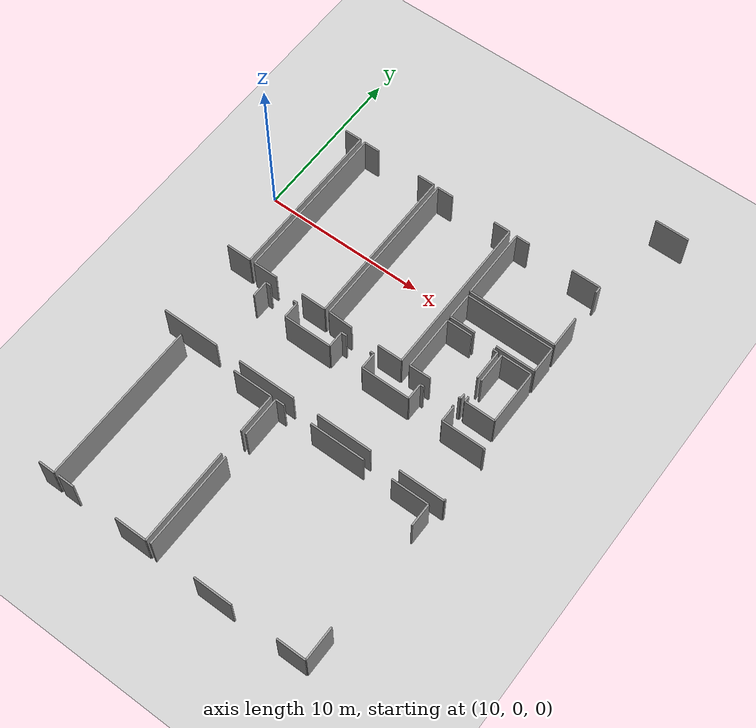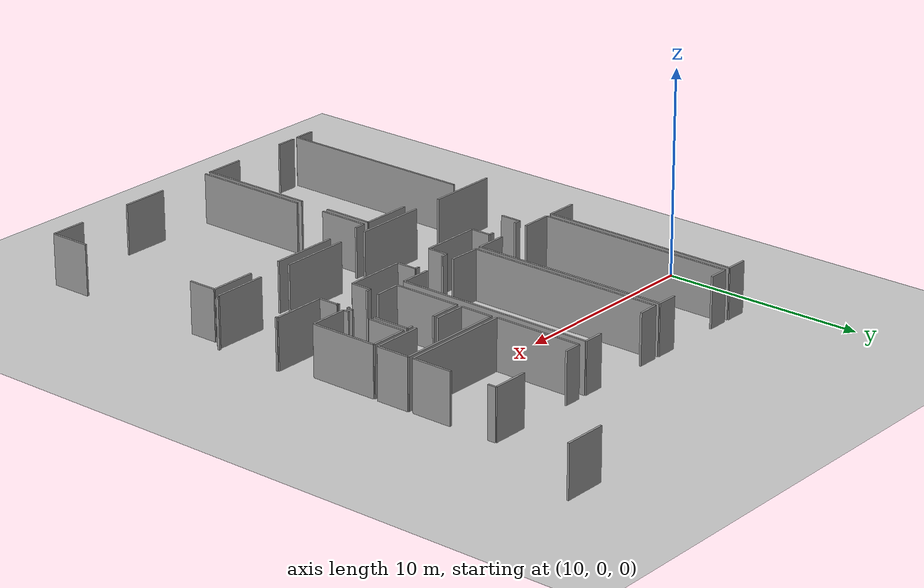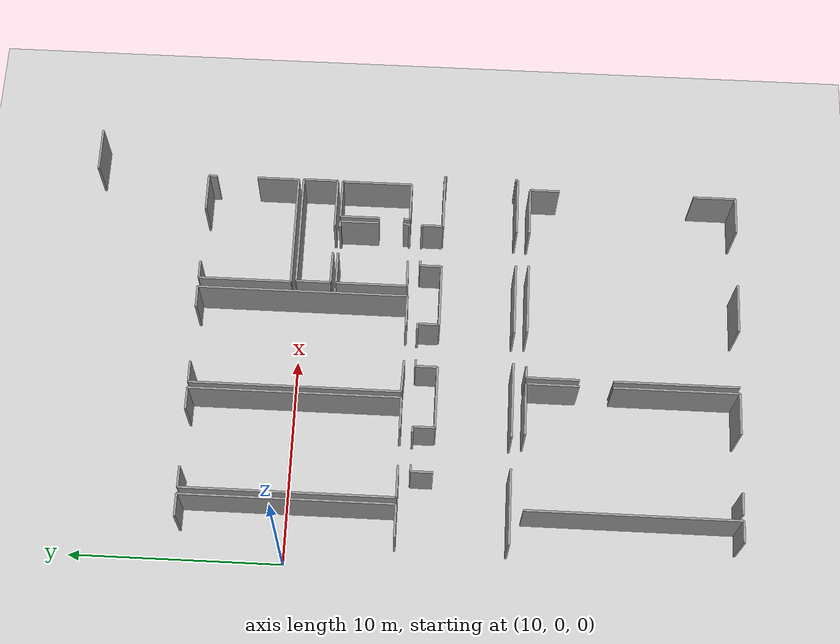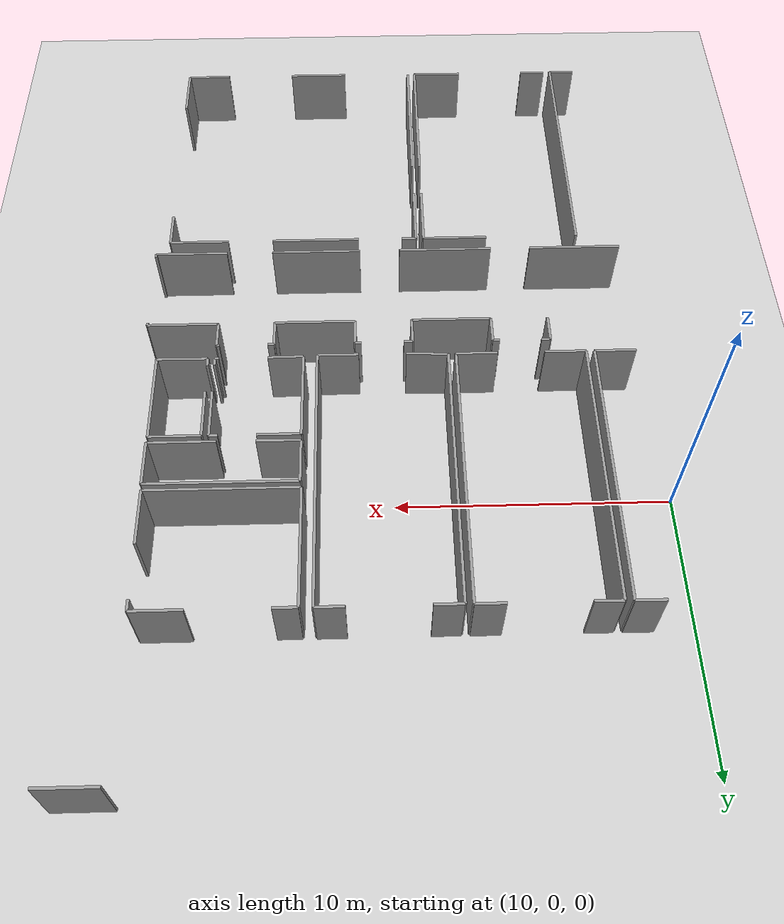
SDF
<sdf version="1.6">
 <world name="default">
  <model name="ground_plane">
   <static>1</static>
   <link name="link">
    <collision name="collision">
     <geometry><plane><normal>0 0 1</normal><size>100 100</size></plane></geometry>
     <surface><friction><ode><mu>100</mu><mu2>50</mu2></ode></friction></surface>
    </collision>
    <visual name="visual">
     <cast_shadows>0</cast_shadows>
     <geometry><plane><normal>0 0 1</normal><size>100 100</size></plane></geometry>
     <material>
      <script><uri>file://media/materials/scripts/gazebo.material</uri><name>Gazebo/Grey</name></script>
     </material>
    </visual>
   </link>
  </model>
  <model name="50055639">
   <static>1</static>
   <link name="Wall_229">
    <collision name="Wall_229_Collision">
     <geometry><box><size>1.02806585511 0.1 2.5</size></box></geometry>
     <pose>0.514032927557 0 1.25 0 0 0</pose>
    </collision>
    <visual name="Wall_229_Visual">
     <pose>0.514032927557 0 1.25 0 0 0</pose>
     <geometry><box><size>1.02806585511 0.1 2.5</size></box></geometry>
     <material>
      <script><uri>file://media/materials/scripts/gazebo.material</uri><name>Gazebo/Grey</name></script>
      <ambient>1 1 1 1</ambient>
     </material>
    </visual>
    <pose>84.4576600363 -27.5893829574 0 0 0 1.57079632679</pose>
   </link>
   <link name="Wall_230">
    <collision name="Wall_230_Collision">
     <geometry><box><size>0.326609883345 0.1 2.5</size></box></geometry>
     <pose>0.163304941672 0 1.25 0 0 0</pose>
    </collision>
    <visual name="Wall_230_Visual">
     <pose>0.163304941672 0 1.25 0 0 0</pose>
     <geometry><box><size>0.326609883345 0.1 2.5</size></box></geometry>
     <material>
      <script><uri>file://media/materials/scripts/gazebo.material</uri><name>Gazebo/Grey</name></script>
      <ambient>1 1 1 1</ambient>
     </material>
    </visual>
    <pose>84.4576600363 -26.5613171023 0 0 0 0.0</pose>
   </link>
   <link name="Wall_231">
    <collision name="Wall_231_Collision">
     <geometry><box><size>0.261364069105 0.1 2.5</size></box></geometry>
     <pose>0.130682034552 0 1.25 0 0 0</pose>
    </collision>
    <visual name="Wall_231_Visual">
     <pose>0.130682034552 0 1.25 0 0 0</pose>
     <geometry><box><size>0.261364069105 0.1 2.5</size></box></geometry>
     <material>
      <script><uri>file://media/materials/scripts/gazebo.material</uri><name>Gazebo/Grey</name></script>
      <ambient>1 1 1 1</ambient>
     </material>
    </visual>
    <pose>86.3519465847 -26.5613171023 0 0 0 0.0</pose>
   </link>
   <link name="Wall_232">
    <collision name="Wall_232_Collision">
     <geometry><box><size>1.03060460275 0.1 2.5</size></box></geometry>
     <pose>0.515302301375 0 1.25 0 0 0</pose>
    </collision>
    <visual name="Wall_232_Visual">
     <pose>0.515302301375 0 1.25 0 0 0</pose>
     <geometry><box><size>1.03060460275 0.1 2.5</size></box></geometry>
     <material>
      <script><uri>file://media/materials/scripts/gazebo.material</uri><name>Gazebo/Grey</name></script>
      <ambient>1 1 1 1</ambient>
     </material>
    </visual>
    <pose>86.6133106539 -26.5613171023 0 0 0 -1.57079632679</pose>
   </link>
   <link name="Wall_233">
    <collision name="Wall_233_Collision">
     <geometry><box><size>2.99013696543 0.1 2.5</size></box></geometry>
     <pose>1.49506848272 0 1.25 0 0 0</pose>
    </collision>
    <visual name="Wall_233_Visual">
     <pose>1.49506848272 0 1.25 0 0 0</pose>
     <geometry><box><size>2.99013696543 0.1 2.5</size></box></geometry>
     <material>
      <script><uri>file://media/materials/scripts/gazebo.material</uri><name>Gazebo/Grey</name></script>
      <ambient>1 1 1 1</ambient>
     </material>
    </visual>
    <pose>86.6133106539 -27.591921705 0 0 0 0.0</pose>
   </link>
   <link name="Wall_234">
    <collision name="Wall_234_Collision">
     <geometry><box><size>1.03060460275 0.1 2.5</size></box></geometry>
     <pose>0.515302301375 0 1.25 0 0 0</pose>
    </collision>
    <visual name="Wall_234_Visual">
     <pose>0.515302301375 0 1.25 0 0 0</pose>
     <geometry><box><size>1.03060460275 0.1 2.5</size></box></geometry>
     <material>
      <script><uri>file://media/materials/scripts/gazebo.material</uri><name>Gazebo/Grey</name></script>
      <ambient>1 1 1 1</ambient>
     </material>
    </visual>
    <pose>89.6034476193 -27.591921705 0 0 0 1.57079632679</pose>
   </link>
   <link name="Wall_235">
    <collision name="Wall_235_Collision">
     <geometry><box><size>0.333845314107 0.1 2.5</size></box></geometry>
     <pose>0.166922657053 0 1.25 0 0 0</pose>
    </collision>
    <visual name="Wall_235_Visual">
     <pose>0.166922657053 0 1.25 0 0 0</pose>
     <geometry><box><size>0.333845314107 0.1 2.5</size></box></geometry>
     <material>
      <script><uri>file://media/materials/scripts/gazebo.material</uri><name>Gazebo/Grey</name></script>
      <ambient>1 1 1 1</ambient>
     </material>
    </visual>
    <pose>89.6034476193 -26.5613171023 0 0 0 0.0</pose>
   </link>
   <link name="Wall_236">
    <collision name="Wall_236_Collision">
     <geometry><box><size>0.233691719875 0.1 2.5</size></box></geometry>
     <pose>0.116845859937 0 1.25 0 0 0</pose>
    </collision>
    <visual name="Wall_236_Visual">
     <pose>0.116845859937 0 1.25 0 0 0</pose>
     <geometry><box><size>0.233691719875 0.1 2.5</size></box></geometry>
     <material>
      <script><uri>file://media/materials/scripts/gazebo.material</uri><name>Gazebo/Grey</name></script>
      <ambient>1 1 1 1</ambient>
     </material>
    </visual>
    <pose>91.5186788357 -26.5613171023 0 0 0 0.0</pose>
   </link>
   <link name="Wall_237">
    <collision name="Wall_237_Collision">
     <geometry><box><size>1.01753005243 0.1 2.5</size></box></geometry>
     <pose>0.508765026213 0 1.25 0 0 0</pose>
    </collision>
    <visual name="Wall_237_Visual">
     <pose>0.508765026213 0 1.25 0 0 0</pose>
     <geometry><box><size>1.01753005243 0.1 2.5</size></box></geometry>
     <material>
      <script><uri>file://media/materials/scripts/gazebo.material</uri><name>Gazebo/Grey</name></script>
      <ambient>1 1 1 1</ambient>
     </material>
    </visual>
    <pose>91.7523705556 -26.5613171023 0 0 0 -1.57079632679</pose>
   </link>
   <link name="Wall_238">
    <collision name="Wall_238_Collision">
     <geometry><box><size>3.01311263154 0.1 2.5</size></box></geometry>
     <pose>1.50655631577 0 1.25 0 0 0</pose>
    </collision>
    <visual name="Wall_238_Visual">
     <pose>1.50655631577 0 1.25 0 0 0</pose>
     <geometry><box><size>3.01311263154 0.1 2.5</size></box></geometry>
     <material>
      <script><uri>file://media/materials/scripts/gazebo.material</uri><name>Gazebo/Grey</name></script>
      <ambient>1 1 1 1</ambient>
     </material>
    </visual>
    <pose>91.7523705556 -27.5788471547 0 0 0 0.0</pose>
   </link>
   <link name="Wall_239">
    <collision name="Wall_239_Collision">
     <geometry><box><size>1.02666954391 0.1 2.5</size></box></geometry>
     <pose>0.513334771957 0 1.25 0 0 0</pose>
    </collision>
    <visual name="Wall_239_Visual">
     <pose>0.513334771957 0 1.25 0 0 0</pose>
     <geometry><box><size>1.02666954391 0.1 2.5</size></box></geometry>
     <material>
      <script><uri>file://media/materials/scripts/gazebo.material</uri><name>Gazebo/Grey</name></script>
      <ambient>1 1 1 1</ambient>
     </material>
    </visual>
    <pose>94.7654831871 -27.5788471547 0 0 0 1.57079632679</pose>
   </link>
   <link name="Wall_240">
    <collision name="Wall_240_Collision">
     <geometry><box><size>0.233691719875 0.1 2.5</size></box></geometry>
     <pose>0.116845859937 0 1.25 0 0 0</pose>
    </collision>
    <visual name="Wall_240_Visual">
     <pose>0.116845859937 0 1.25 0 0 0</pose>
     <geometry><box><size>0.233691719875 0.1 2.5</size></box></geometry>
     <material>
      <script><uri>file://media/materials/scripts/gazebo.material</uri><name>Gazebo/Grey</name></script>
      <ambient>1 1 1 1</ambient>
     </material>
    </visual>
    <pose>94.7654831871 -26.5521776108 0 0 0 0.0</pose>
   </link>
   <link name="Wall_241">
    <collision name="Wall_241_Collision">
     <geometry><box><size>0.0992650325594 0.1 2.5</size></box></geometry>
     <pose>0.0496325162797 0 1.25 0 0 0</pose>
    </collision>
    <visual name="Wall_241_Visual">
     <pose>0.0496325162797 0 1.25 0 0 0</pose>
     <geometry><box><size>0.0992650325594 0.1 2.5</size></box></geometry>
     <material>
      <script><uri>file://media/materials/scripts/gazebo.material</uri><name>Gazebo/Grey</name></script>
      <ambient>1 1 1 1</ambient>
     </material>
    </visual>
    <pose>96.8013049163 -26.5521776108 0 0 0 0.0</pose>
   </link>
   <link name="Wall_242">
    <collision name="Wall_242_Collision">
     <geometry><box><size>1.01511824217 0.1 2.5</size></box></geometry>
     <pose>0.507559121086 0 1.25 0 0 0</pose>
    </collision>
    <visual name="Wall_242_Visual">
     <pose>0.507559121086 0 1.25 0 0 0</pose>
     <geometry><box><size>1.01511824217 0.1 2.5</size></box></geometry>
     <material>
      <script><uri>file://media/materials/scripts/gazebo.material</uri><name>Gazebo/Grey</name></script>
      <ambient>1 1 1 1</ambient>
     </material>
    </visual>
    <pose>96.9005699488 -26.5521776108 0 0 0 -1.57079632679</pose>
   </link>
   <link name="Wall_243">
    <collision name="Wall_243_Collision">
     <geometry><box><size>2.66771601569 0.1 2.5</size></box></geometry>
     <pose>1.33385800784 0 1.25 0 0 0</pose>
    </collision>
    <visual name="Wall_243_Visual">
     <pose>1.33385800784 0 1.25 0 0 0</pose>
     <geometry><box><size>2.66771601569 0.1 2.5</size></box></geometry>
     <material>
      <script><uri>file://media/materials/scripts/gazebo.material</uri><name>Gazebo/Grey</name></script>
      <ambient>1 1 1 1</ambient>
     </material>
    </visual>
    <pose>96.9005699488 -27.567295853 0 0 0 0.0</pose>
   </link>
   <link name="Wall_244">
    <collision name="Wall_244_Collision">
     <geometry><box><size>0.104469465213 0.1 2.5</size></box></geometry>
     <pose>0.0522347326064 0 1.25 0 0 0</pose>
    </collision>
    <visual name="Wall_244_Visual">
     <pose>0.0522347326064 0 1.25 0 0 0</pose>
     <geometry><box><size>0.104469465213 0.1 2.5</size></box></geometry>
     <material>
      <script><uri>file://media/materials/scripts/gazebo.material</uri><name>Gazebo/Grey</name></script>
      <ambient>1 1 1 1</ambient>
     </material>
    </visual>
    <pose>99.5682859645 -27.567295853 0 0 0 -1.57079632679</pose>
   </link>
   <link name="Wall_245">
    <collision name="Wall_245_Collision">
     <geometry><box><size>0.126175757499 0.1 2.5</size></box></geometry>
     <pose>0.0630878787494 0 1.25 0 0 0</pose>
    </collision>
    <visual name="Wall_245_Visual">
     <pose>0.0630878787494 0 1.25 0 0 0</pose>
     <geometry><box><size>0.126175757499 0.1 2.5</size></box></geometry>
     <material>
      <script><uri>file://media/materials/scripts/gazebo.material</uri><name>Gazebo/Grey</name></script>
      <ambient>1 1 1 1</ambient>
     </material>
    </visual>
    <pose>99.5682859645 -31.0048870892 0 0 0 -1.57079632679</pose>
   </link>
   <link name="Wall_246">
    <collision name="Wall_246_Collision">
     <geometry><box><size>2.7875449041 0.1 2.5</size></box></geometry>
     <pose>1.39377245205 0 1.25 0 0 0</pose>
    </collision>
    <visual name="Wall_246_Visual">
     <pose>1.39377245205 0 1.25 0 0 0</pose>
     <geometry><box><size>2.7875449041 0.1 2.5</size></box></geometry>
     <material>
      <script><uri>file://media/materials/scripts/gazebo.material</uri><name>Gazebo/Grey</name></script>
      <ambient>1 1 1 1</ambient>
     </material>
    </visual>
    <pose>99.5682859645 -31.1310628467 0 0 0 3.14159265359</pose>
   </link>
   <link name="Wall_247">
    <collision name="Wall_247_Collision">
     <geometry><box><size>3.45345840897 0.1 2.5</size></box></geometry>
     <pose>1.72672920448 0 1.25 0 0 0</pose>
    </collision>
    <visual name="Wall_247_Visual">
     <pose>1.72672920448 0 1.25 0 0 0</pose>
     <geometry><box><size>3.45345840897 0.1 2.5</size></box></geometry>
     <material>
      <script><uri>file://media/materials/scripts/gazebo.material</uri><name>Gazebo/Grey</name></script>
      <ambient>1 1 1 1</ambient>
     </material>
    </visual>
    <pose>94.9916856015 -31.1310628467 0 0 0 3.14159265359</pose>
   </link>
   <link name="Wall_248">
    <collision name="Wall_248_Collision">
     <geometry><box><size>3.61403419693 0.1 2.5</size></box></geometry>
     <pose>1.80701709847 0 1.25 0 0 0</pose>
    </collision>
    <visual name="Wall_248_Visual">
     <pose>1.80701709847 0 1.25 0 0 0</pose>
     <geometry><box><size>3.61403419693 0.1 2.5</size></box></geometry>
     <material>
      <script><uri>file://media/materials/scripts/gazebo.material</uri><name>Gazebo/Grey</name></script>
      <ambient>1 1 1 1</ambient>
     </material>
    </visual>
    <pose>89.9663615938 -31.1310628467 0 0 0 3.14159265359</pose>
   </link>
   <link name="Wall_249">
    <collision name="Wall_249_Collision">
     <geometry><box><size>3.55945112276 0.1 2.5</size></box></geometry>
     <pose>1.77972556138 0 1.25 0 0 0</pose>
    </collision>
    <visual name="Wall_249_Visual">
     <pose>1.77972556138 0 1.25 0 0 0</pose>
     <geometry><box><size>3.55945112276 0.1 2.5</size></box></geometry>
     <material>
      <script><uri>file://media/materials/scripts/gazebo.material</uri><name>Gazebo/Grey</name></script>
      <ambient>1 1 1 1</ambient>
     </material>
    </visual>
    <pose>84.7984869064 -31.1310628467 0 0 0 3.14159265359</pose>
   </link>
   <link name="Wall_288">
    <collision name="Wall_288_Collision">
     <geometry><box><size>1.06830500514 0.1 2.5</size></box></geometry>
     <pose>0.53415250257 0 1.25 0 0 0</pose>
    </collision>
    <visual name="Wall_288_Visual">
     <pose>0.53415250257 0 1.25 0 0 0</pose>
     <geometry><box><size>1.06830500514 0.1 2.5</size></box></geometry>
     <material>
      <script><uri>file://media/materials/scripts/gazebo.material</uri><name>Gazebo/Grey</name></script>
      <ambient>1 1 1 1</ambient>
     </material>
    </visual>
    <pose>81.8119041877 -15.9940339431 0 0 0 0.0</pose>
   </link>
   <link name="Wall_289">
    <collision name="Wall_289_Collision">
     <geometry><box><size>9.97892839462 0.1 2.5</size></box></geometry>
     <pose>4.98946419731 0 1.25 0 0 0</pose>
    </collision>
    <visual name="Wall_289_Visual">
     <pose>4.98946419731 0 1.25 0 0 0</pose>
     <geometry><box><size>9.97892839462 0.1 2.5</size></box></geometry>
     <material>
      <script><uri>file://media/materials/scripts/gazebo.material</uri><name>Gazebo/Grey</name></script>
      <ambient>1 1 1 1</ambient>
     </material>
    </visual>
    <pose>82.8802091928 -15.9940339431 0 0 0 -1.57079632679</pose>
   </link>
   <link name="Wall_290">
    <collision name="Wall_290_Collision">
     <geometry><box><size>1.5523172419 0.1 2.5</size></box></geometry>
     <pose>0.776158620952 0 1.25 0 0 0</pose>
    </collision>
    <visual name="Wall_290_Visual">
     <pose>0.776158620952 0 1.25 0 0 0</pose>
     <geometry><box><size>1.5523172419 0.1 2.5</size></box></geometry>
     <material>
      <script><uri>file://media/materials/scripts/gazebo.material</uri><name>Gazebo/Grey</name></script>
      <ambient>1 1 1 1</ambient>
     </material>
    </visual>
    <pose>82.8802091928 -25.9729623377 0 0 0 3.14159265359</pose>
   </link>
   <link name="Wall_292">
    <collision name="Wall_292_Collision">
     <geometry><box><size>9.97385089935 0.1 2.5</size></box></geometry>
     <pose>4.98692544968 0 1.25 0 0 0</pose>
    </collision>
    <visual name="Wall_292_Visual">
     <pose>4.98692544968 0 1.25 0 0 0</pose>
     <geometry><box><size>9.97385089935 0.1 2.5</size></box></geometry>
     <material>
      <script><uri>file://media/materials/scripts/gazebo.material</uri><name>Gazebo/Grey</name></script>
      <ambient>1 1 1 1</ambient>
     </material>
    </visual>
    <pose>83.1890478427 -25.9762627096 0 0 0 1.57079632679</pose>
   </link>
   <link name="Wall_293">
    <collision name="Wall_293_Collision">
     <geometry><box><size>0.993285012503 0.1 2.5</size></box></geometry>
     <pose>0.496642506252 0 1.25 0 0 0</pose>
    </collision>
    <visual name="Wall_293_Visual">
     <pose>0.496642506252 0 1.25 0 0 0</pose>
     <geometry><box><size>0.993285012503 0.1 2.5</size></box></geometry>
     <material>
      <script><uri>file://media/materials/scripts/gazebo.material</uri><name>Gazebo/Grey</name></script>
      <ambient>1 1 1 1</ambient>
     </material>
    </visual>
    <pose>83.1890478427 -16.0024118103 0 0 0 0.0</pose>
   </link>
   <link name="Wall_294">
    <collision name="Wall_294_Collision">
     <geometry><box><size>1.05967326318 0.1 2.5</size></box></geometry>
     <pose>0.52983663159 0 1.25 0 0 0</pose>
    </collision>
    <visual name="Wall_294_Visual">
     <pose>0.52983663159 0 1.25 0 0 0</pose>
     <geometry><box><size>1.05967326318 0.1 2.5</size></box></geometry>
     <material>
      <script><uri>file://media/materials/scripts/gazebo.material</uri><name>Gazebo/Grey</name></script>
      <ambient>1 1 1 1</ambient>
     </material>
    </visual>
    <pose>86.9616268295 -16.0024118103 0 0 0 0.0</pose>
   </link>
   <link name="Wall_295">
    <collision name="Wall_295_Collision">
     <geometry><box><size>9.96851952932 0.1 2.5</size></box></geometry>
     <pose>4.98425976466 0 1.25 0 0 0</pose>
    </collision>
    <visual name="Wall_295_Visual">
     <pose>4.98425976466 0 1.25 0 0 0</pose>
     <geometry><box><size>9.96851952932 0.1 2.5</size></box></geometry>
     <material>
      <script><uri>file://media/materials/scripts/gazebo.material</uri><name>Gazebo/Grey</name></script>
      <ambient>1 1 1 1</ambient>
     </material>
    </visual>
    <pose>88.0213000927 -16.0024118103 0 0 0 -1.57079632679</pose>
   </link>
   <link name="Wall_296">
    <collision name="Wall_296_Collision">
     <geometry><box><size>1.55041318118 0.1 2.5</size></box></geometry>
     <pose>0.775206590589 0 1.25 0 0 0</pose>
    </collision>
    <visual name="Wall_296_Visual">
     <pose>0.775206590589 0 1.25 0 0 0</pose>
     <geometry><box><size>1.55041318118 0.1 2.5</size></box></geometry>
     <material>
      <script><uri>file://media/materials/scripts/gazebo.material</uri><name>Gazebo/Grey</name></script>
      <ambient>1 1 1 1</ambient>
     </material>
    </visual>
    <pose>88.0213000927 -25.9709313396 0 0 0 3.14159265359</pose>
   </link>
   <link name="Wall_297">
    <collision name="Wall_297_Collision">
     <geometry><box><size>1.54001354423 0.1 2.5</size></box></geometry>
     <pose>0.770006772114 0 1.25 0 0 0</pose>
    </collision>
    <visual name="Wall_297_Visual">
     <pose>0.770006772114 0 1.25 0 0 0</pose>
     <geometry><box><size>1.54001354423 0.1 2.5</size></box></geometry>
     <material>
      <script><uri>file://media/materials/scripts/gazebo.material</uri><name>Gazebo/Grey</name></script>
      <ambient>1 1 1 1</ambient>
     </material>
    </visual>
    <pose>84.7290521586 -25.9709313396 0 0 0 -3.13813074853</pose>
   </link>
   <link name="Wall_298">
    <collision name="Wall_298_Collision">
     <geometry><box><size>9.93919699412 0.1 2.5</size></box></geometry>
     <pose>4.96959849706 0 1.25 0 0 0</pose>
    </collision>
    <visual name="Wall_298_Visual">
     <pose>4.96959849706 0 1.25 0 0 0</pose>
     <geometry><box><size>9.93919699412 0.1 2.5</size></box></geometry>
     <material>
      <script><uri>file://media/materials/scripts/gazebo.material</uri><name>Gazebo/Grey</name></script>
      <ambient>1 1 1 1</ambient>
     </material>
    </visual>
    <pose>88.3053859531 -25.9512560454 0 0 0 1.57079632679</pose>
   </link>
   <link name="Wall_299">
    <collision name="Wall_299_Collision">
     <geometry><box><size>1.01727617766 0.1 2.5</size></box></geometry>
     <pose>0.508638088831 0 1.25 0 0 0</pose>
    </collision>
    <visual name="Wall_299_Visual">
     <pose>0.508638088831 0 1.25 0 0 0</pose>
     <geometry><box><size>1.01727617766 0.1 2.5</size></box></geometry>
     <material>
      <script><uri>file://media/materials/scripts/gazebo.material</uri><name>Gazebo/Grey</name></script>
      <ambient>1 1 1 1</ambient>
     </material>
    </visual>
    <pose>88.3053859531 -16.0120590513 0 0 0 0.0</pose>
   </link>
   <link name="Wall_300">
    <collision name="Wall_300_Collision">
     <geometry><box><size>1.02628873177 0.1 2.5</size></box></geometry>
     <pose>0.513144365884 0 1.25 0 0 0</pose>
    </collision>
    <visual name="Wall_300_Visual">
     <pose>0.513144365884 0 1.25 0 0 0</pose>
     <geometry><box><size>1.02628873177 0.1 2.5</size></box></geometry>
     <material>
      <script><uri>file://media/materials/scripts/gazebo.material</uri><name>Gazebo/Grey</name></script>
      <ambient>1 1 1 1</ambient>
     </material>
    </visual>
    <pose>92.1269627693 -16.0120590513 0 0 0 0.0</pose>
   </link>
   <link name="Wall_301">
    <collision name="Wall_301_Collision">
     <geometry><box><size>9.99885756356 0.1 2.5</size></box></geometry>
     <pose>4.99942878178 0 1.25 0 0 0</pose>
    </collision>
    <visual name="Wall_301_Visual">
     <pose>4.99942878178 0 1.25 0 0 0</pose>
     <geometry><box><size>9.99885756356 0.1 2.5</size></box></geometry>
     <material>
      <script><uri>file://media/materials/scripts/gazebo.material</uri><name>Gazebo/Grey</name></script>
      <ambient>1 1 1 1</ambient>
     </material>
    </visual>
    <pose>93.153251501 -16.0120590513 0 0 0 -1.57079632679</pose>
   </link>
   <link name="Wall_302">
    <collision name="Wall_302_Collision">
     <geometry><box><size>1.53441907107 0.1 2.5</size></box></geometry>
     <pose>0.767209535536 0 1.25 0 0 0</pose>
    </collision>
    <visual name="Wall_302_Visual">
     <pose>0.767209535536 0 1.25 0 0 0</pose>
     <geometry><box><size>1.53441907107 0.1 2.5</size></box></geometry>
     <material>
      <script><uri>file://media/materials/scripts/gazebo.material</uri><name>Gazebo/Grey</name></script>
      <ambient>1 1 1 1</ambient>
     </material>
    </visual>
    <pose>93.153251501 -26.0109166148 0 0 0 3.14159265359</pose>
   </link>
   <link name="Wall_303">
    <collision name="Wall_303_Collision">
     <geometry><box><size>1.5594249655 0.1 2.5</size></box></geometry>
     <pose>0.779712482749 0 1.25 0 0 0</pose>
    </collision>
    <visual name="Wall_303_Visual">
     <pose>0.779712482749 0 1.25 0 0 0</pose>
     <geometry><box><size>1.5594249655 0.1 2.5</size></box></geometry>
     <material>
      <script><uri>file://media/materials/scripts/gazebo.material</uri><name>Gazebo/Grey</name></script>
      <ambient>1 1 1 1</ambient>
     </material>
    </visual>
    <pose>89.863669252 -26.0109166148 0 0 0 3.10332525737</pose>
   </link>
   <link name="Wall_304">
    <collision name="Wall_304_Collision">
     <geometry><box><size>3.3891011564 0.1 2.5</size></box></geometry>
     <pose>1.6945505782 0 1.25 0 0 0</pose>
    </collision>
    <visual name="Wall_304_Visual">
     <pose>1.6945505782 0 1.25 0 0 0</pose>
     <geometry><box><size>3.3891011564 0.1 2.5</size></box></geometry>
     <material>
      <script><uri>file://media/materials/scripts/gazebo.material</uri><name>Gazebo/Grey</name></script>
      <ambient>1 1 1 1</ambient>
     </material>
    </visual>
    <pose>93.6655707739 -25.9709313396 0 0 0 1.57079632679</pose>
   </link>
   <link name="Wall_305">
    <collision name="Wall_305_Collision">
     <geometry><box><size>1.57770471826 0.1 2.5</size></box></geometry>
     <pose>0.788852359131 0 1.25 0 0 0</pose>
    </collision>
    <visual name="Wall_305_Visual">
     <pose>0.788852359131 0 1.25 0 0 0</pose>
     <geometry><box><size>1.57770471826 0.1 2.5</size></box></geometry>
     <material>
      <script><uri>file://media/materials/scripts/gazebo.material</uri><name>Gazebo/Grey</name></script>
      <ambient>1 1 1 1</ambient>
     </material>
    </visual>
    <pose>93.6655707739 -22.5818301832 0 0 0 0.0</pose>
   </link>
   <link name="Wall_306">
    <collision name="Wall_306_Collision">
     <geometry><box><size>0.309346399421 0.1 2.5</size></box></geometry>
     <pose>0.154673199711 0 1.25 0 0 0</pose>
    </collision>
    <visual name="Wall_306_Visual">
     <pose>0.154673199711 0 1.25 0 0 0</pose>
     <geometry><box><size>0.309346399421 0.1 2.5</size></box></geometry>
     <material>
      <script><uri>file://media/materials/scripts/gazebo.material</uri><name>Gazebo/Grey</name></script>
      <ambient>1 1 1 1</ambient>
     </material>
    </visual>
    <pose>96.619022836 -22.5818301832 0 0 0 0.0</pose>
   </link>
   <link name="Wall_307">
    <collision name="Wall_307_Collision">
     <geometry><box><size>1.87765775143 0.1 2.5</size></box></geometry>
     <pose>0.938828875716 0 1.25 0 0 0</pose>
    </collision>
    <visual name="Wall_307_Visual">
     <pose>0.938828875716 0 1.25 0 0 0</pose>
     <geometry><box><size>1.87765775143 0.1 2.5</size></box></geometry>
     <material>
      <script><uri>file://media/materials/scripts/gazebo.material</uri><name>Gazebo/Grey</name></script>
      <ambient>1 1 1 1</ambient>
     </material>
    </visual>
    <pose>96.9283692355 -22.5818301832 0 0 0 -1.57079632679</pose>
   </link>
   <link name="Wall_308">
    <collision name="Wall_308_Collision">
     <geometry><box><size>0.312139021821 0.1 2.5</size></box></geometry>
     <pose>0.15606951091 0 1.25 0 0 0</pose>
    </collision>
    <visual name="Wall_308_Visual">
     <pose>0.15606951091 0 1.25 0 0 0</pose>
     <geometry><box><size>0.312139021821 0.1 2.5</size></box></geometry>
     <material>
      <script><uri>file://media/materials/scripts/gazebo.material</uri><name>Gazebo/Grey</name></script>
      <ambient>1 1 1 1</ambient>
     </material>
    </visual>
    <pose>96.9283692355 -25.6394978357 0 0 0 -1.57079632679</pose>
   </link>
   <link name="Wall_309">
    <collision name="Wall_309_Collision">
     <geometry><box><size>0.139884994732 0.1 2.5</size></box></geometry>
     <pose>0.069942497366 0 1.25 0 0 0</pose>
    </collision>
    <visual name="Wall_309_Visual">
     <pose>0.069942497366 0 1.25 0 0 0</pose>
     <geometry><box><size>0.139884994732 0.1 2.5</size></box></geometry>
     <material>
      <script><uri>file://media/materials/scripts/gazebo.material</uri><name>Gazebo/Grey</name></script>
      <ambient>1 1 1 1</ambient>
     </material>
    </visual>
    <pose>96.9283692355 -25.9516368575 0 0 0 3.14159265359</pose>
   </link>
   <link name="Wall_310">
    <collision name="Wall_310_Collision">
     <geometry><box><size>1.3129281837 0.1 2.5</size></box></geometry>
     <pose>0.656464091848 0 1.25 0 0 0</pose>
    </collision>
    <visual name="Wall_310_Visual">
     <pose>0.656464091848 0 1.25 0 0 0</pose>
     <geometry><box><size>1.3129281837 0.1 2.5</size></box></geometry>
     <material>
      <script><uri>file://media/materials/scripts/gazebo.material</uri><name>Gazebo/Grey</name></script>
      <ambient>1 1 1 1</ambient>
     </material>
    </visual>
    <pose>94.9783571764 -25.9516368575 0 0 0 -3.12689636111</pose>
   </link>
   <link name="Wall_311">
    <collision name="Wall_311_Collision">
     <geometry><box><size>0.315439393747 0.1 2.5</size></box></geometry>
     <pose>0.157719696874 0 1.25 0 0 0</pose>
    </collision>
    <visual name="Wall_311_Visual">
     <pose>0.157719696874 0 1.25 0 0 0</pose>
     <geometry><box><size>0.315439393747 0.1 2.5</size></box></geometry>
     <material>
      <script><uri>file://media/materials/scripts/gazebo.material</uri><name>Gazebo/Grey</name></script>
      <ambient>1 1 1 1</ambient>
     </material>
    </visual>
    <pose>97.1870676195 -25.9518907323 0 0 0 1.57079632679</pose>
   </link>
   <link name="Wall_312">
    <collision name="Wall_312_Collision">
     <geometry><box><size>1.89822160728 0.1 2.5</size></box></geometry>
     <pose>0.949110803641 0 1.25 0 0 0</pose>
    </collision>
    <visual name="Wall_312_Visual">
     <pose>0.949110803641 0 1.25 0 0 0</pose>
     <geometry><box><size>1.89822160728 0.1 2.5</size></box></geometry>
     <material>
      <script><uri>file://media/materials/scripts/gazebo.material</uri><name>Gazebo/Grey</name></script>
      <ambient>1 1 1 1</ambient>
     </material>
    </visual>
    <pose>97.1870676195 -24.4823366633 0 0 0 1.57079632679</pose>
   </link>
   <link name="Wall_313">
    <collision name="Wall_313_Collision">
     <geometry><box><size>1.88032343645 0.1 2.5</size></box></geometry>
     <pose>0.940161718224 0 1.25 0 0 0</pose>
    </collision>
    <visual name="Wall_313_Visual">
     <pose>0.940161718224 0 1.25 0 0 0</pose>
     <geometry><box><size>1.88032343645 0.1 2.5</size></box></geometry>
     <material>
      <script><uri>file://media/materials/scripts/gazebo.material</uri><name>Gazebo/Grey</name></script>
      <ambient>1 1 1 1</ambient>
     </material>
    </visual>
    <pose>97.1870676195 -22.584115056 0 0 0 0.0</pose>
   </link>
   <link name="Wall_314">
    <collision name="Wall_314_Collision">
     <geometry><box><size>3.37475723226 0.1 2.5</size></box></geometry>
     <pose>1.68737861613 0 1.25 0 0 0</pose>
    </collision>
    <visual name="Wall_314_Visual">
     <pose>1.68737861613 0 1.25 0 0 0</pose>
     <geometry><box><size>3.37475723226 0.1 2.5</size></box></geometry>
     <material>
      <script><uri>file://media/materials/scripts/gazebo.material</uri><name>Gazebo/Grey</name></script>
      <ambient>1 1 1 1</ambient>
     </material>
    </visual>
    <pose>99.067391056 -22.584115056 0 0 0 -1.57079632679</pose>
   </link>
   <link name="Wall_315">
    <collision name="Wall_315_Collision">
     <geometry><box><size>1.88033639751 0.1 2.5</size></box></geometry>
     <pose>0.940168198753 0 1.25 0 0 0</pose>
    </collision>
    <visual name="Wall_315_Visual">
     <pose>0.940168198753 0 1.25 0 0 0</pose>
     <geometry><box><size>1.88033639751 0.1 2.5</size></box></geometry>
     <material>
      <script><uri>file://media/materials/scripts/gazebo.material</uri><name>Gazebo/Grey</name></script>
      <ambient>1 1 1 1</ambient>
     </material>
    </visual>
    <pose>99.067391056 -25.9588722883 0 0 0 3.13787971581</pose>
   </link>
   <link name="Wall_316">
    <collision name="Wall_316_Collision">
     <geometry><box><size>1.64130034654 0.1 2.5</size></box></geometry>
     <pose>0.82065017327 0 1.25 0 0 0</pose>
    </collision>
    <visual name="Wall_316_Visual">
     <pose>0.82065017327 0 1.25 0 0 0</pose>
     <geometry><box><size>1.64130034654 0.1 2.5</size></box></geometry>
     <material>
      <script><uri>file://media/materials/scripts/gazebo.material</uri><name>Gazebo/Grey</name></script>
      <ambient>1 1 1 1</ambient>
     </material>
    </visual>
    <pose>93.6742025159 -22.3160233057 0 0 0 1.57079632679</pose>
   </link>
   <link name="Wall_317">
    <collision name="Wall_317_Collision">
     <geometry><box><size>5.42301882481 0.1 2.5</size></box></geometry>
     <pose>2.71150941241 0 1.25 0 0 0</pose>
    </collision>
    <visual name="Wall_317_Visual">
     <pose>2.71150941241 0 1.25 0 0 0</pose>
     <geometry><box><size>5.42301882481 0.1 2.5</size></box></geometry>
     <material>
      <script><uri>file://media/materials/scripts/gazebo.material</uri><name>Gazebo/Grey</name></script>
      <ambient>1 1 1 1</ambient>
     </material>
    </visual>
    <pose>93.6742025159 -20.6747229592 0 0 0 0.0</pose>
   </link>
   <link name="Wall_318">
    <collision name="Wall_318_Collision">
     <geometry><box><size>1.66046789119 0.1 2.5</size></box></geometry>
     <pose>0.830233945595 0 1.25 0 0 0</pose>
    </collision>
    <visual name="Wall_318_Visual">
     <pose>0.830233945595 0 1.25 0 0 0</pose>
     <geometry><box><size>1.66046789119 0.1 2.5</size></box></geometry>
     <material>
      <script><uri>file://media/materials/scripts/gazebo.material</uri><name>Gazebo/Grey</name></script>
      <ambient>1 1 1 1</ambient>
     </material>
    </visual>
    <pose>99.0972213407 -20.6747229592 0 0 0 -1.57079632679</pose>
   </link>
   <link name="Wall_319">
    <collision name="Wall_319_Collision">
     <geometry><box><size>2.45382652737 0.1 2.5</size></box></geometry>
     <pose>1.22691326369 0 1.25 0 0 0</pose>
    </collision>
    <visual name="Wall_319_Visual">
     <pose>1.22691326369 0 1.25 0 0 0</pose>
     <geometry><box><size>2.45382652737 0.1 2.5</size></box></geometry>
     <material>
      <script><uri>file://media/materials/scripts/gazebo.material</uri><name>Gazebo/Grey</name></script>
      <ambient>1 1 1 1</ambient>
     </material>
    </visual>
    <pose>99.0972213407 -22.3351908504 0 0 0 3.14159265359</pose>
   </link>
   <link name="Wall_320">
    <collision name="Wall_320_Collision">
     <geometry><box><size>1.58378676564 0.1 2.5</size></box></geometry>
     <pose>0.791893382819 0 1.25 0 0 0</pose>
    </collision>
    <visual name="Wall_320_Visual">
     <pose>0.791893382819 0 1.25 0 0 0</pose>
     <geometry><box><size>1.58378676564 0.1 2.5</size></box></geometry>
     <material>
      <script><uri>file://media/materials/scripts/gazebo.material</uri><name>Gazebo/Grey</name></script>
      <ambient>1 1 1 1</ambient>
     </material>
    </visual>
    <pose>95.2578732911 -22.3351908504 0 0 0 3.12949000632</pose>
   </link>
   <link name="Wall_321">
    <collision name="Wall_321_Collision">
     <geometry><box><size>5.87415427969 0.1 2.5</size></box></geometry>
     <pose>2.93707713985 0 1.25 0 0 0</pose>
    </collision>
    <visual name="Wall_321_Visual">
     <pose>2.93707713985 0 1.25 0 0 0</pose>
     <geometry><box><size>5.87415427969 0.1 2.5</size></box></geometry>
     <material>
      <script><uri>file://media/materials/scripts/gazebo.material</uri><name>Gazebo/Grey</name></script>
      <ambient>1 1 1 1</ambient>
     </material>
    </visual>
    <pose>89.2877543508 -41.6949186966 0 0 0 1.57079632679</pose>
   </link>
   <link name="Wall_322">
    <collision name="Wall_322_Collision">
     <geometry><box><size>2.4884804326 0.1 2.5</size></box></geometry>
     <pose>1.2442402163 0 1.25 0 0 0</pose>
    </collision>
    <visual name="Wall_322_Visual">
     <pose>1.2442402163 0 1.25 0 0 0</pose>
     <geometry><box><size>2.4884804326 0.1 2.5</size></box></geometry>
     <material>
      <script><uri>file://media/materials/scripts/gazebo.material</uri><name>Gazebo/Grey</name></script>
      <ambient>1 1 1 1</ambient>
     </material>
    </visual>
    <pose>89.2877543508 -34.2341740819 0 0 0 1.57079632679</pose>
   </link>
   <link name="Wall_323">
    <collision name="Wall_323_Collision">
     <geometry><box><size>0.556239607002 0.1 2.5</size></box></geometry>
     <pose>0.278119803501 0 1.25 0 0 0</pose>
    </collision>
    <visual name="Wall_323_Visual">
     <pose>0.278119803501 0 1.25 0 0 0</pose>
     <geometry><box><size>0.556239607002 0.1 2.5</size></box></geometry>
     <material>
      <script><uri>file://media/materials/scripts/gazebo.material</uri><name>Gazebo/Grey</name></script>
      <ambient>1 1 1 1</ambient>
     </material>
    </visual>
    <pose>89.2877543508 -31.7456936493 0 0 0 0.0</pose>
   </link>
   <link name="Wall_324">
    <collision name="Wall_324_Collision">
     <geometry><box><size>3.41372700847 0.1 2.5</size></box></geometry>
     <pose>1.70686350423 0 1.25 0 0 0</pose>
    </collision>
    <visual name="Wall_324_Visual">
     <pose>1.70686350423 0 1.25 0 0 0</pose>
     <geometry><box><size>3.41372700847 0.1 2.5</size></box></geometry>
     <material>
      <script><uri>file://media/materials/scripts/gazebo.material</uri><name>Gazebo/Grey</name></script>
      <ambient>1 1 1 1</ambient>
     </material>
    </visual>
    <pose>91.5854478986 -31.7456936493 0 0 0 0.0</pose>
   </link>
   <link name="Wall_325">
    <collision name="Wall_325_Collision">
     <geometry><box><size>2.30365960472 0.1 2.5</size></box></geometry>
     <pose>1.15182980236 0 1.25 0 0 0</pose>
    </collision>
    <visual name="Wall_325_Visual">
     <pose>1.15182980236 0 1.25 0 0 0</pose>
     <geometry><box><size>2.30365960472 0.1 2.5</size></box></geometry>
     <material>
      <script><uri>file://media/materials/scripts/gazebo.material</uri><name>Gazebo/Grey</name></script>
      <ambient>1 1 1 1</ambient>
     </material>
    </visual>
    <pose>96.7601772046 -31.7456936493 0 0 0 0.0</pose>
   </link>
   <link name="Wall_326">
    <collision name="Wall_326_Collision">
     <geometry><box><size>1.41687505554 0.1 2.5</size></box></geometry>
     <pose>0.708437527768 0 1.25 0 0 0</pose>
    </collision>
    <visual name="Wall_326_Visual">
     <pose>0.708437527768 0 1.25 0 0 0</pose>
     <geometry><box><size>1.41687505554 0.1 2.5</size></box></geometry>
     <material>
      <script><uri>file://media/materials/scripts/gazebo.material</uri><name>Gazebo/Grey</name></script>
      <ambient>1 1 1 1</ambient>
     </material>
    </visual>
    <pose>99.0638368093 -31.7456936493 0 0 0 -1.57079632679</pose>
   </link>
   <link name="Wall_327">
    <collision name="Wall_327_Collision">
     <geometry><box><size>2.0340446058 0.1 2.5</size></box></geometry>
     <pose>1.0170223029 0 1.25 0 0 0</pose>
    </collision>
    <visual name="Wall_327_Visual">
     <pose>1.0170223029 0 1.25 0 0 0</pose>
     <geometry><box><size>2.0340446058 0.1 2.5</size></box></geometry>
     <material>
      <script><uri>file://media/materials/scripts/gazebo.material</uri><name>Gazebo/Grey</name></script>
      <ambient>1 1 1 1</ambient>
     </material>
    </visual>
    <pose>99.0638368093 -39.6889272522 0 0 0 -1.57079632679</pose>
   </link>
   <link name="Wall_328">
    <collision name="Wall_328_Collision">
     <geometry><box><size>1.77521928433 0.1 2.5</size></box></geometry>
     <pose>0.887609642164 0 1.25 0 0 0</pose>
    </collision>
    <visual name="Wall_328_Visual">
     <pose>0.887609642164 0 1.25 0 0 0</pose>
     <geometry><box><size>1.77521928433 0.1 2.5</size></box></geometry>
     <material>
      <script><uri>file://media/materials/scripts/gazebo.material</uri><name>Gazebo/Grey</name></script>
      <ambient>1 1 1 1</ambient>
     </material>
    </visual>
    <pose>99.0638368093 -41.722971858 0 0 0 3.14159265359</pose>
   </link>
   <link name="Wall_329">
    <collision name="Wall_329_Collision">
     <geometry><box><size>2.37080947968 0.1 2.5</size></box></geometry>
     <pose>1.18540473984 0 1.25 0 0 0</pose>
    </collision>
    <visual name="Wall_329_Visual">
     <pose>1.18540473984 0 1.25 0 0 0</pose>
     <geometry><box><size>2.37080947968 0.1 2.5</size></box></geometry>
     <material>
      <script><uri>file://media/materials/scripts/gazebo.material</uri><name>Gazebo/Grey</name></script>
      <ambient>1 1 1 1</ambient>
     </material>
    </visual>
    <pose>94.4900290687 -41.722971858 0 0 0 3.14159265359</pose>
   </link>
   <link name="Wall_330">
    <collision name="Wall_330_Collision">
     <geometry><box><size>2.50066642125 0.1 2.5</size></box></geometry>
     <pose>1.25033321063 0 1.25 0 0 0</pose>
    </collision>
    <visual name="Wall_330_Visual">
     <pose>1.25033321063 0 1.25 0 0 0</pose>
     <geometry><box><size>2.50066642125 0.1 2.5</size></box></geometry>
     <material>
      <script><uri>file://media/materials/scripts/gazebo.material</uri><name>Gazebo/Grey</name></script>
      <ambient>1 1 1 1</ambient>
     </material>
    </visual>
    <pose>86.4862463347 -31.7432818391 0 0 0 0.0</pose>
   </link>
   <link name="Wall_331">
    <collision name="Wall_331_Collision">
     <geometry><box><size>2.49393874002 0.1 2.5</size></box></geometry>
     <pose>1.24696937001 0 1.25 0 0 0</pose>
    </collision>
    <visual name="Wall_331_Visual">
     <pose>1.24696937001 0 1.25 0 0 0</pose>
     <geometry><box><size>2.49393874002 0.1 2.5</size></box></geometry>
     <material>
      <script><uri>file://media/materials/scripts/gazebo.material</uri><name>Gazebo/Grey</name></script>
      <ambient>1 1 1 1</ambient>
     </material>
    </visual>
    <pose>88.9869127559 -31.7432818391 0 0 0 -1.57079632679</pose>
   </link>
   <link name="Wall_332">
    <collision name="Wall_332_Collision">
     <geometry><box><size>5.88621333096 0.1 2.5</size></box></geometry>
     <pose>2.94310666548 0 1.25 0 0 0</pose>
    </collision>
    <visual name="Wall_332_Visual">
     <pose>2.94310666548 0 1.25 0 0 0</pose>
     <geometry><box><size>5.88621333096 0.1 2.5</size></box></geometry>
     <material>
      <script><uri>file://media/materials/scripts/gazebo.material</uri><name>Gazebo/Grey</name></script>
      <ambient>1 1 1 1</ambient>
     </material>
    </visual>
    <pose>88.9869127559 -35.803500933 0 0 0 -1.57079632679</pose>
   </link>
   <link name="Wall_333">
    <collision name="Wall_333_Collision">
     <geometry><box><size>1.99659807817 0.1 2.5</size></box></geometry>
     <pose>0.998299039084 0 1.25 0 0 0</pose>
    </collision>
    <visual name="Wall_333_Visual">
     <pose>0.998299039084 0 1.25 0 0 0</pose>
     <geometry><box><size>1.99659807817 0.1 2.5</size></box></geometry>
     <material>
      <script><uri>file://media/materials/scripts/gazebo.material</uri><name>Gazebo/Grey</name></script>
      <ambient>1 1 1 1</ambient>
     </material>
    </visual>
    <pose>88.9869127559 -41.689714264 0 0 0 3.14159265359</pose>
   </link>
   <link name="Wall_334">
    <collision name="Wall_334_Collision">
     <geometry><box><size>1.02769636316 0.1 2.5</size></box></geometry>
     <pose>0.513848181581 0 1.25 0 0 0</pose>
    </collision>
    <visual name="Wall_334_Visual">
     <pose>0.513848181581 0 1.25 0 0 0</pose>
     <geometry><box><size>1.02769636316 0.1 2.5</size></box></geometry>
     <material>
      <script><uri>file://media/materials/scripts/gazebo.material</uri><name>Gazebo/Grey</name></script>
      <ambient>1 1 1 1</ambient>
     </material>
    </visual>
    <pose>84.1970575915 -41.689714264 0 0 0 3.13689901217</pose>
   </link>
   <link name="Wall_338">
    <collision name="Wall_338_Collision">
     <geometry><box><size>9.95531804161 0.1 2.5</size></box></geometry>
     <pose>4.97765902081 0 1.25 0 0 0</pose>
    </collision>
    <visual name="Wall_338_Visual">
     <pose>4.97765902081 0 1.25 0 0 0</pose>
     <geometry><box><size>9.95531804161 0.1 2.5</size></box></geometry>
     <material>
      <script><uri>file://media/materials/scripts/gazebo.material</uri><name>Gazebo/Grey</name></script>
      <ambient>1 1 1 1</ambient>
     </material>
    </visual>
    <pose>82.8812246919 -31.7454397746 0 0 0 -1.57079632679</pose>
   </link>
   <link name="Wall_339">
    <collision name="Wall_339_Collision">
     <geometry><box><size>1.02755810559 0.1 2.5</size></box></geometry>
     <pose>0.513779052793 0 1.25 0 0 0</pose>
    </collision>
    <visual name="Wall_339_Visual">
     <pose>0.513779052793 0 1.25 0 0 0</pose>
     <geometry><box><size>1.02755810559 0.1 2.5</size></box></geometry>
     <material>
      <script><uri>file://media/materials/scripts/gazebo.material</uri><name>Gazebo/Grey</name></script>
      <ambient>1 1 1 1</ambient>
     </material>
    </visual>
    <pose>82.8812246919 -41.7007578162 0 0 0 3.14159265359</pose>
   </link>
   <link name="Wall_404">
    <collision name="Wall_404_Collision">
     <geometry><box><size>4.40371164904 0.1 2.5</size></box></geometry>
     <pose>2.20185582452 0 1.25 0 0 0</pose>
    </collision>
    <visual name="Wall_404_Visual">
     <pose>2.20185582452 0 1.25 0 0 0</pose>
     <geometry><box><size>4.40371164904 0.1 2.5</size></box></geometry>
     <material>
      <script><uri>file://media/materials/scripts/gazebo.material</uri><name>Gazebo/Grey</name></script>
      <ambient>1 1 1 1</ambient>
     </material>
    </visual>
    <pose>93.6201271913 -20.4228791937 0 0 0 1.57079632679</pose>
   </link>
   <link name="Wall_405">
    <collision name="Wall_405_Collision">
     <geometry><box><size>0.861524010206 0.1 2.5</size></box></geometry>
     <pose>0.430762005103 0 1.25 0 0 0</pose>
    </collision>
    <visual name="Wall_405_Visual">
     <pose>0.430762005103 0 1.25 0 0 0</pose>
     <geometry><box><size>0.861524010206 0.1 2.5</size></box></geometry>
     <material>
      <script><uri>file://media/materials/scripts/gazebo.material</uri><name>Gazebo/Grey</name></script>
      <ambient>1 1 1 1</ambient>
     </material>
    </visual>
    <pose>93.6201271913 -16.0191675447 0 0 0 0.0</pose>
   </link>
   <link name="Wall_406">
    <collision name="Wall_406_Collision">
     <geometry><box><size>1.79451376636 0.1 2.5</size></box></geometry>
     <pose>0.89725688318 0 1.25 0 0 0</pose>
    </collision>
    <visual name="Wall_406_Visual">
     <pose>0.89725688318 0 1.25 0 0 0</pose>
     <geometry><box><size>1.79451376636 0.1 2.5</size></box></geometry>
     <material>
      <script><uri>file://media/materials/scripts/gazebo.material</uri><name>Gazebo/Grey</name></script>
      <ambient>1 1 1 1</ambient>
     </material>
    </visual>
    <pose>97.2777009101 -16.0191675447 0 0 0 0.0</pose>
   </link>
   <link name="Wall_407">
    <collision name="Wall_407_Collision">
     <geometry><box><size>0.403153124564 0.1 2.5</size></box></geometry>
     <pose>0.201576562282 0 1.25 0 0 0</pose>
    </collision>
    <visual name="Wall_407_Visual">
     <pose>0.201576562282 0 1.25 0 0 0</pose>
     <geometry><box><size>0.403153124564 0.1 2.5</size></box></geometry>
     <material>
      <script><uri>file://media/materials/scripts/gazebo.material</uri><name>Gazebo/Grey</name></script>
      <ambient>1 1 1 1</ambient>
     </material>
    </visual>
    <pose>99.0722146765 -16.0191675447 0 0 0 -1.57079632679</pose>
   </link>
   <link name="Wall_408">
    <collision name="Wall_408_Collision">
     <geometry><box><size>2.02058924333 0.1 2.5</size></box></geometry>
     <pose>1.01029462166 0 1.25 0 0 0</pose>
    </collision>
    <visual name="Wall_408_Visual">
     <pose>1.01029462166 0 1.25 0 0 0</pose>
     <geometry><box><size>2.02058924333 0.1 2.5</size></box></geometry>
     <material>
      <script><uri>file://media/materials/scripts/gazebo.material</uri><name>Gazebo/Grey</name></script>
      <ambient>1 1 1 1</ambient>
     </material>
    </visual>
    <pose>99.0722146765 -18.4045748232 0 0 0 -1.57079632679</pose>
   </link>
   <link name="Wall_409">
    <collision name="Wall_409_Collision">
     <geometry><box><size>5.45208796402 0.1 2.5</size></box></geometry>
     <pose>2.72604398201 0 1.25 0 0 0</pose>
    </collision>
    <visual name="Wall_409_Visual">
     <pose>2.72604398201 0 1.25 0 0 0</pose>
     <geometry><box><size>5.45208796402 0.1 2.5</size></box></geometry>
     <material>
      <script><uri>file://media/materials/scripts/gazebo.material</uri><name>Gazebo/Grey</name></script>
      <ambient>1 1 1 1</ambient>
     </material>
    </visual>
    <pose>99.0722146765 -20.4251640666 0 0 0 3.1411735714</pose>
   </link>
   <link name="Wall_417">
    <collision name="Wall_417_Collision">
     <geometry><box><size>2.08951624164 0.1 2.5</size></box></geometry>
     <pose>1.04475812082 0 1.25 0 0 0</pose>
    </collision>
    <visual name="Wall_417_Visual">
     <pose>1.04475812082 0 1.25 0 0 0</pose>
     <geometry><box><size>2.08951624164 0.1 2.5</size></box></geometry>
     <material>
      <script><uri>file://media/materials/scripts/gazebo.material</uri><name>Gazebo/Grey</name></script>
      <ambient>1 1 1 1</ambient>
     </material>
    </visual>
    <pose>99.212353546 -10.5719036799 0 0 0 0.0</pose>
   </link>
   <pose>-70.4 20.8983593343 0 0 0 0</pose>
  </model>
 </world>
</sdf>
